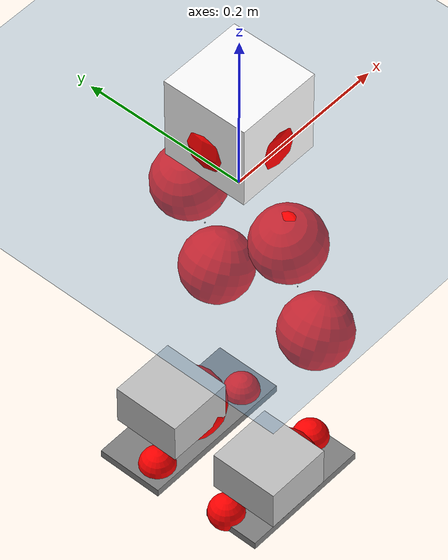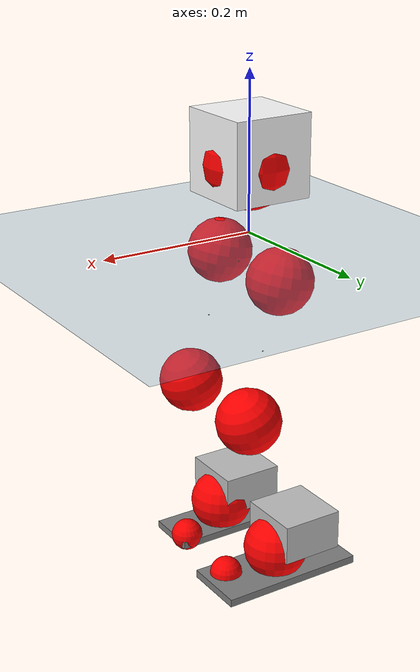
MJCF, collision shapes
<mujoco model="pi_12dof_release_v1">
  <compiler angle="radian" assetdir="assets" balanceinertia="true" inertiafromgeom="false"/>

  <option timestep="0.005" density="1.2" viscosity="2e-05"/>

  <size nkey="1"/>

  <visual>
    <quality shadowsize="8192"/>
    <map shadowclip="0.5"/>
  </visual>

  <default>
    <default class="/">
      <joint armature="0.01" damping="0.01" frictionloss="0.01"/>
      <geom contype="0" conaffinity="0" group="1" solref="-1000 -80"/>
      <site size="0.01 0.005 0.005" group="5"/>
      <general forcelimited="true" biastype="affine" gainprm="20" biasprm="0 -20 -0.5"/>
      <default class="foot">
        <geom size="0.0845 0.036 0.005" type="box" condim="6" group="4" priority="1" friction="0.9 0.2 0.2" solimp="0.015 1 0.005"/>
      </default>
      <default class="reward_collision_sphere">
        <geom group="5" rgba="1 0 0 1"/>
      </default>
    </default>
  </default>

  <asset>
    <texture type="skybox" colorspace="auto" name="//unnamed_texture_0" builtin="gradient" rgb1="0.95 0.95 0.95" rgb2="0.95 0.95 0.95" width="100" height="600"/>
    <texture type="2d" colorspace="auto" name="texplane" builtin="checker" rgb1="0.345 0.575 0.748" rgb2="0.345 0.575 0.748" markrgb="1 1 1" width="512" height="512"/>
    <material name="MatPlane" class="/" texture="texplane" texuniform="true" texrepeat="2 2" specular="0.9"/>
    <mesh name="baselink_1" class="/" file="baselink_1.STL"/>
    <mesh name="r_hip_pitch_link" class="/" file="r_hip_pitch_link.STL"/>
    <mesh name="r_hip_roll_link" class="/" file="r_hip_roll_link.STL"/>
    <mesh name="r_thigh_link" class="/" file="r_thigh_link.STL"/>
    <mesh name="r_calf_link" class="/" file="r_calf_link.STL"/>
    <mesh name="r_ankle_pitch_link" class="/" file="r_ankle_pitch_link.STL"/>
    <mesh name="r_ankle_roll_link" class="/" file="r_ankle_roll_link.STL"/>
    <mesh name="l_hip_pitch_link" class="/" file="l_hip_pitch_link.STL"/>
    <mesh name="l_hip_roll_link" class="/" file="l_hip_roll_link.STL"/>
    <mesh name="l_thigh_link" class="/" file="l_thigh_link.STL"/>
    <mesh name="l_calf_link" class="/" file="l_calf_link.STL"/>
    <mesh name="l_ankle_pitch_link" class="/" file="l_ankle_pitch_link.STL"/>
    <mesh name="l_ankle_roll_link" class="/" file="l_ankle_roll_link.STL"/>
  </asset>

  <worldbody>
    <geom name="floor" class="/" size="100 100 0.125" type="plane" group="0" material="MatPlane"/>
    <light name="toplight_shadow" class="/" pos="0 0 5" dir="0.0990148 0.0990148 -0.990148" type="directional" ambient="0.04 0.04 0.04" diffuse="0.55 0.55 0.55" specular="0.12 0.12 0.12"/>
    <light name="toplight_fill" class="/" pos="0 0 5" dir="0.0990148 0.0990148 -0.990148" type="directional" castshadow="false" ambient="0.04 0.04 0.04" diffuse="0.3 0.3 0.3" specular="0.08 0.08 0.08"/>
    <body name="trunk" pos="-0.000119638 1.02388e-05 -0.00264251" quat="1 0.000150221 -0.000263618 -0.000232324">
      <inertial pos="0.0013074 0.00110443 0.0537736" quat="0.695309 0.00961128 0.00952709 0.718583" mass="2.3327" diaginertia="0.00995614 0.00323879 0.013915"/>
      <joint name="//unnamed_joint_0" type="free"/>
      <geom name="//unnamed_geom_1" class="/" type="mesh" density="0" rgba="1 1 1 1" mesh="baselink_1"/>
      <geom name="//unnamed_geom_2" class="/" size="0.0517958 0.0517958 0.0517958" pos="0 0 0.102321" type="box" rgba="1 1 1 1"/>
      <geom name="//unnamed_geom_3" class="reward_collision_sphere" size="0.0569754" pos="0 0 0.0895304"/>
      <site name="imu" class="/" pos="0.00990334 -0.0140381 0.0109018" size="0.0103592"/>
      <camera name="track" class="/" pos="0 -1.64513 0" quat="0.707107 0.707107 0 0" mode="trackcom"/>
      <camera name="ego_camera" class="/" pos="0.0754634 0 0.230221" quat="-0.5 -0.5 0.5 0.5"/>
      <body name="r_hip_pitch_link" pos="0.000577376 -0.0213085 -0.0410341" quat="0.992268 -0.000585114 -0.124114 -1.58201e-05">
        <inertial pos="-0.000964376 -0.0452869 -0.00287426" quat="-0.020473 0.706311 -0.0285084 0.707031" mass="0.397553" diaginertia="0.000110093 3.4968e-05 0.000288806"/>
        <joint name="r_hip_pitch_joint" class="/" pos="0 0 0" axis="-0.000246538 -0.999998 -0.00203587" stiffness="0.0102629" range="-1.73992 1.19435" armature="0.00890207" damping="0.001693" frictionloss="0.0090716"/>
        <geom name="//unnamed_geom_4" class="/" type="mesh" density="0" rgba="0.75294 0.75294 0.75294 1" mesh="r_hip_pitch_link"/>
        <geom name="//unnamed_geom_5" class="/" size="0.000517958 0.000517958 0.000517958" type="box" rgba="0.75294 0.75294 0.75294 1"/>
        <body name="r_hip_roll_link" pos="-0.000869614 -0.0452652 0.00283231" quat="1 -5.95226e-05 2.37008e-05 1.40251e-05">
          <inertial pos="-0.00117227 0.00127469 -0.0808559" quat="0.705472 -0.0753822 -0.0801356 0.700146" mass="0.428681" diaginertia="0.00034247 0.000105637 0.000427849"/>
          <joint name="r_hip_roll_joint" class="/" pos="0 0 0" axis="-0.999943 -0.00479497 0.00954107" range="-0.115725 0.515261" armature="0.0104075" damping="0.0239309" frictionloss="0.0118213"/>
          <geom name="//unnamed_geom_6" class="/" type="mesh" density="0" rgba="0.75294 0.75294 0.75294 1" mesh="r_hip_roll_link"/>
          <geom name="//unnamed_geom_7" class="/" size="0.000517958 0.000517958 0.000517958" type="box" rgba="0.75294 0.75294 0.75294 1"/>
          <geom name="//unnamed_geom_8" class="reward_collision_sphere" size="0.0414367"/>
          <body name="r_thigh_link" pos="-0.00228593 0.0030637 -0.0863223" quat="1 -0.000521446 -0.000285274 -0.000381802">
            <inertial pos="0.000415352 0.000772192 -0.0600081" quat="0.736973 0.675922 -0.000616299 -0.000136065" mass="0.118133" diaginertia="0.00012861 3.56603e-05 0.00018954"/>
            <joint name="r_thigh_joint" class="/" pos="0 0 0" axis="-0.00451861 -0.00235464 -0.999987" stiffness="0.000589825" range="-0.299162 0.545755" armature="0.0114196" damping="0.00770466" frictionloss="0.0102612"/>
            <geom name="//unnamed_geom_9" class="/" type="mesh" density="0" rgba="0.75294 0.75294 0.75294 1" mesh="r_thigh_link"/>
            <geom name="//unnamed_geom_10" class="/" size="0.000517958 0.000517958 0.000517958" type="box" rgba="0.75294 0.75294 0.75294 1"/>
            <body name="r_calf_link" pos="0.0024385 -0.004668 -0.0905883" quat="0.947886 -3.23082e-05 0.31861 -0.000811013">
              <inertial pos="0.000695048 -0.000224561 -0.0895686" quat="0.99999 -0.00314918 -0.000777196 0.00302837" mass="0.904778" diaginertia="0.0036055 0.00124815 0.000596705"/>
              <joint name="r_calf_joint" class="/" pos="0 0 0" axis="0.00399287 -0.99999 -0.00211803" stiffness="0.00845563" range="-1.70057 0.652838" armature="0.0102493" damping="0.00644183" frictionloss="0.00961393"/>
              <geom name="//unnamed_geom_11" class="/" type="mesh" density="0" rgba="0.75294 0.75294 0.75294 1" mesh="r_calf_link"/>
              <geom name="//unnamed_geom_12" class="/" size="0.000517958 0.000517958 0.000517958" type="box" rgba="0.75294 0.75294 0.75294 1"/>
              <geom name="//unnamed_geom_13" class="reward_collision_sphere" size="0.0414367"/>
              <body name="r_ankle_pitch_link" pos="0.00054642 0.00311199 -0.178901" quat="0.980161 -0.000468805 -0.198201 0.000350933">
                <inertial pos="0.00509942 0.00325133 -0.000253081" quat="0.00123205 0.707099 -7.26462e-05 0.707114" mass="0.189511" diaginertia="0.000313162 8.11634e-05 0.000413088"/>
                <joint name="r_ankle_pitch_joint" class="/" pos="0 0 0" axis="-0.00860855 -0.999932 0.0079241" range="-1.3526 0.551605" armature="0.0102533" damping="0.0164708" frictionloss="0.0113816"/>
                <geom name="//unnamed_geom_14" class="/" type="mesh" density="0" rgba="0.75294 0.75294 0.75294 1" mesh="r_ankle_pitch_link"/>
                <geom name="//unnamed_geom_15" class="/" size="0.0404008 0.0414367 0.0258979" type="box" rgba="0.75294 0.75294 0.75294 1"/>
                <body name="r_ankle_roll_link" pos="0.0768332 0.00423329 0.00266062" quat="1 -8.11343e-07 2.24919e-05 2.6684e-06">
                  <inertial pos="-0.0262247 -0.0006949 -0.017903" quat="0.562252 0.423961 0.435521 0.56076" mass="0.581223" diaginertia="0.00121596 0.000393938 0.000982936"/>
                  <joint name="r_ankle_roll_joint" class="/" pos="0 0 0" axis="-0.999998 0.002029 -0.000367989" stiffness="0.00145004" range="-0.162356 0.151641" armature="0.0105111" damping="0.00956363" frictionloss="0.0105226"/>
                  <geom name="//unnamed_geom_16" class="/" type="mesh" density="0" rgba="0.75294 0.75294 0.75294 1" mesh="r_ankle_roll_link"/>
                  <geom name="//unnamed_geom_17" class="/" type="mesh" rgba="0.75294 0.75294 0.75294 1" mesh="r_ankle_roll_link"/>
                  <geom name="right_foot" class="foot" size="0.0812823 0.0340843 0.00483089" pos="-0.0513151 0 -0.0562763"/>
                  <geom name="//unnamed_geom_19" class="reward_collision_sphere" size="0.0414367" pos="-0.050309 0 -0.0255801"/>
                  <geom name="//unnamed_geom_20" class="reward_collision_sphere" size="0.0207183" pos="0.0150927 0.0164513 -0.0511603"/>
                  <geom name="//unnamed_geom_21" class="reward_collision_sphere" size="0.0207183" pos="-0.120741 0.0164513 -0.0511603"/>
                  <site name="right_foot" class="foot" pos="-0.0513151 0 -0.0562763" size="0.0103592"/>
                </body>
              </body>
            </body>
          </body>
        </body>
      </body>
      <body name="l_hip_pitch_link" pos="-0.00192218 0.0211089 -0.041349" quat="0.992203 5.78447e-06 -0.124635 1.09037e-06">
        <inertial pos="-0.00181724 0.042493 0.000227807" quat="-0.0401582 0.705385 0.0295749 0.707068" mass="0.433229" diaginertia="0.000135402 4.09082e-05 0.000333357"/>
        <joint name="l_hip_pitch_joint" class="/" pos="0 0 0" axis="0.00111548 0.999986 0.00508891" range="-1.20333 1.72315" armature="0.0119021" damping="0.0256778" frictionloss="0.00929157"/>
        <geom name="//unnamed_geom_22" class="/" type="mesh" density="0" rgba="0.75294 0.75294 0.75294 1" mesh="l_hip_pitch_link"/>
        <geom name="//unnamed_geom_23" class="/" size="0.000517958 0.000517958 0.000517958" type="box" rgba="0.75294 0.75294 0.75294 1"/>
        <body name="l_hip_roll_link" pos="0.000845435 0.0446179 2.3167e-05" quat="0.999999 0.0010788 -6.60151e-05 -0.000824816">
          <inertial pos="-0.00216083 -0.00280469 -0.0786" quat="0.698052 -0.0657931 -0.0724201 0.709331" mass="0.426262" diaginertia="0.000348248 0.000102375 0.000461539"/>
          <joint name="l_hip_roll_joint" class="/" pos="0 0 0" axis="-0.999939 0.00743769 0.00811919" range="-0.498141 0.0959693" armature="0.010879" damping="0.0126996" frictionloss="0.00991852"/>
          <geom name="//unnamed_geom_24" class="/" type="mesh" density="0" rgba="0.75294 0.75294 0.75294 1" mesh="l_hip_roll_link"/>
          <geom name="//unnamed_geom_25" class="/" size="0.000517958 0.000517958 0.000517958" type="box" rgba="0.75294 0.75294 0.75294 1"/>
          <geom name="//unnamed_geom_26" class="reward_collision_sphere" size="0.0414367"/>
          <body name="l_thigh_link" pos="0.00254832 0.000484808 -0.0882553" quat="0.999999 0.000953294 -0.000552175 -8.82008e-05">
            <inertial pos="0.00242806 -0.00360877 -0.0632731" quat="0.675688 0.737187 -0.000553288 0.000262394" mass="0.122175" diaginertia="0.000125633 3.61321e-05 0.00019676"/>
            <joint name="l_thigh_joint" class="/" pos="0 0 0" axis="-0.00342315 -0.00284425 -0.99999" range="-0.576606 0.261512" armature="0.00912848" damping="0.0185809" frictionloss="0.00899296"/>
            <geom name="//unnamed_geom_27" class="/" type="mesh" density="0" rgba="0.75294 0.75294 0.75294 1" mesh="l_thigh_link"/>
            <geom name="//unnamed_geom_28" class="/" size="0.000517958 0.000517958 0.000517958" type="box" rgba="0.75294 0.75294 0.75294 1"/>
            <body name="l_calf_link" pos="-0.000403176 0.00295751 -0.0899961" quat="0.947623 6.09808e-05 0.31939 -0.00100079">
              <inertial pos="0.000442221 0.00519354 -0.0921703" quat="0.999988 0.00256045 -0.000283903 0.00420987" mass="0.859092" diaginertia="0.00362859 0.0012289 0.00057794"/>
              <joint name="l_calf_joint" class="/" pos="0 0 0" axis="-0.00468574 0.999989 0.000138271" stiffness="0.011843" range="-0.633392 1.59876" armature="0.0105395" damping="0.0130804" frictionloss="0.00890959"/>
              <geom name="//unnamed_geom_29" class="/" type="mesh" density="0" rgba="0.75294 0.75294 0.75294 1" mesh="l_calf_link"/>
              <geom name="//unnamed_geom_30" class="/" size="0.000517958 0.000517958 0.000517958" type="box" rgba="0.75294 0.75294 0.75294 1"/>
              <geom name="//unnamed_geom_31" class="reward_collision_sphere" size="0.0414367"/>
              <body name="l_ankle_pitch_link" pos="-0.000432399 0.00249298 -0.179067" quat="0.980052 -0.000149834 -0.198743 0.000116423">
                <inertial pos="0.00513278 -0.000807229 0.00278928" quat="-0.00183497 0.714096 0.00829035 0.699997" mass="0.194511" diaginertia="0.000321387 8.4085e-05 0.000414658"/>
                <joint name="l_ankle_pitch_joint" class="/" pos="0 0 0" axis="-0.00611058 0.999981 -0.00122339" stiffness="0.00351303" range="-0.495692 1.30084" armature="0.0101693" damping="0.00505633" frictionloss="0.00993272"/>
                <geom name="//unnamed_geom_32" class="/" type="mesh" density="0" rgba="0.75294 0.75294 0.75294 1" mesh="l_ankle_pitch_link"/>
                <geom name="//unnamed_geom_33" class="/" size="0.0404008 0.0414367 0.0258979" type="box" rgba="0.75294 0.75294 0.75294 1"/>
                <body name="l_ankle_roll_link" pos="0.0781414 -0.00118447 0.00102809" quat="0.999999 -0.000256238 -0.000978853 0.000742036">
                  <inertial pos="-0.0221254 0.000630622 -0.018956" quat="0.561543 0.431325 0.435515 0.555837" mass="0.546731" diaginertia="0.00113107 0.000367445 0.000935572"/>
                  <joint name="l_ankle_roll_joint" class="/" pos="0 0 0" axis="-1 7.83878e-05 0.000159637" range="-0.164097 0.156717" armature="0.0103345" damping="0.00791519" frictionloss="0.010305"/>
                  <geom name="//unnamed_geom_34" class="/" type="mesh" density="0" rgba="0.75294 0.75294 0.75294 1" mesh="l_ankle_roll_link"/>
                  <geom name="//unnamed_geom_35" class="/" type="mesh" rgba="0.75294 0.75294 0.75294 1" mesh="l_ankle_roll_link"/>
                  <geom name="left_foot" class="foot" size="0.0959035 0.0409155 0.00502622" pos="-0.0513151 0 -0.0562763"/>
                  <geom name="//unnamed_geom_37" class="reward_collision_sphere" size="0.0414367" pos="-0.050309 0 -0.0255801"/>
                  <geom name="//unnamed_geom_38" class="reward_collision_sphere" size="0.0207183" pos="0.0150927 -0.0164513 -0.0511603"/>
                  <geom name="//unnamed_geom_39" class="reward_collision_sphere" size="0.0207183" pos="-0.120741 -0.0164513 -0.0511603"/>
                  <site name="left_foot" class="foot" pos="-0.0513151 0 -0.0562763" size="0.0103592"/>
                </body>
              </body>
            </body>
          </body>
        </body>
      </body>
    </body>
  </worldbody>

  <contact>
    <pair class="/" geom1="floor" geom2="right_foot" name="//unnamed_contact_1"/>
    <pair class="/" geom1="floor" geom2="left_foot" name="//unnamed_contact_0"/>
  </contact>

  <actuator>
    <general name="r_hip_pitch_joint" class="/" joint="r_hip_pitch_joint" forcerange="-19.6501 19.6501" gainprm="19.5556" biasprm="0 -19.5556 -0.536025"/>
    <general name="r_hip_roll_joint" class="/" joint="r_hip_roll_joint" forcerange="-21.7643 21.7643" gainprm="19.5556" biasprm="0 -19.5556 -0.536025"/>
    <general name="r_thigh_joint" class="/" joint="r_thigh_joint" forcerange="-19.5057 19.5057" gainprm="19.5556" biasprm="0 -19.5556 -0.536025"/>
    <general name="r_calf_joint" class="/" joint="r_calf_joint" forcerange="-23.2805 23.2805" gainprm="19.5556" biasprm="0 -19.5556 -0.536025"/>
    <general name="r_ankle_pitch_joint" class="/" joint="r_ankle_pitch_joint" forcerange="-24.0321 24.0321" gainprm="19.5556" biasprm="0 -19.5556 -0.536025"/>
    <general name="r_ankle_roll_joint" class="/" joint="r_ankle_roll_joint" forcerange="-22.9575 22.9575" gainprm="19.5556" biasprm="0 -19.5556 -0.536025"/>
    <general name="l_hip_pitch_joint" class="/" joint="l_hip_pitch_joint" forcerange="-19.4756 19.4756" gainprm="19.5556" biasprm="0 -19.5556 -0.536025"/>
    <general name="l_hip_roll_joint" class="/" joint="l_hip_roll_joint" forcerange="-21.5997 21.5997" gainprm="19.5556" biasprm="0 -19.5556 -0.536025"/>
    <general name="l_thigh_joint" class="/" joint="l_thigh_joint" forcerange="-22.6671 22.6671" gainprm="19.5556" biasprm="0 -19.5556 -0.536025"/>
    <general name="l_calf_joint" class="/" joint="l_calf_joint" forcerange="-20.4642 20.4642" gainprm="19.5556" biasprm="0 -19.5556 -0.536025"/>
    <general name="l_ankle_pitch_joint" class="/" joint="l_ankle_pitch_joint" forcerange="-23.3188 23.3188" gainprm="19.5556" biasprm="0 -19.5556 -0.536025"/>
    <general name="l_ankle_roll_joint" class="/" joint="l_ankle_roll_joint" forcerange="-19.6094 19.6094" gainprm="19.5556" biasprm="0 -19.5556 -0.536025"/>
  </actuator>

  <sensor>
    <gyro site="imu" name="imu_angular_velocity"/>
    <velocimeter site="imu" name="imu_linear_velocity"/>
    <framelinvel objtype="site" objname="left_foot" name="left_foot_global_linear_velocity"/>
    <framelinvel objtype="site" objname="right_foot" name="right_foot_global_linear_velocity"/>
  </sensor>

  <keyframe>
    <key name="home" qpos="0 0 0.291 1 0 0 0 0.4 0 0 -0.8 0.4 0 -0.4 0 0 0.8 -0.4 0"/>
  </keyframe>
</mujoco>
